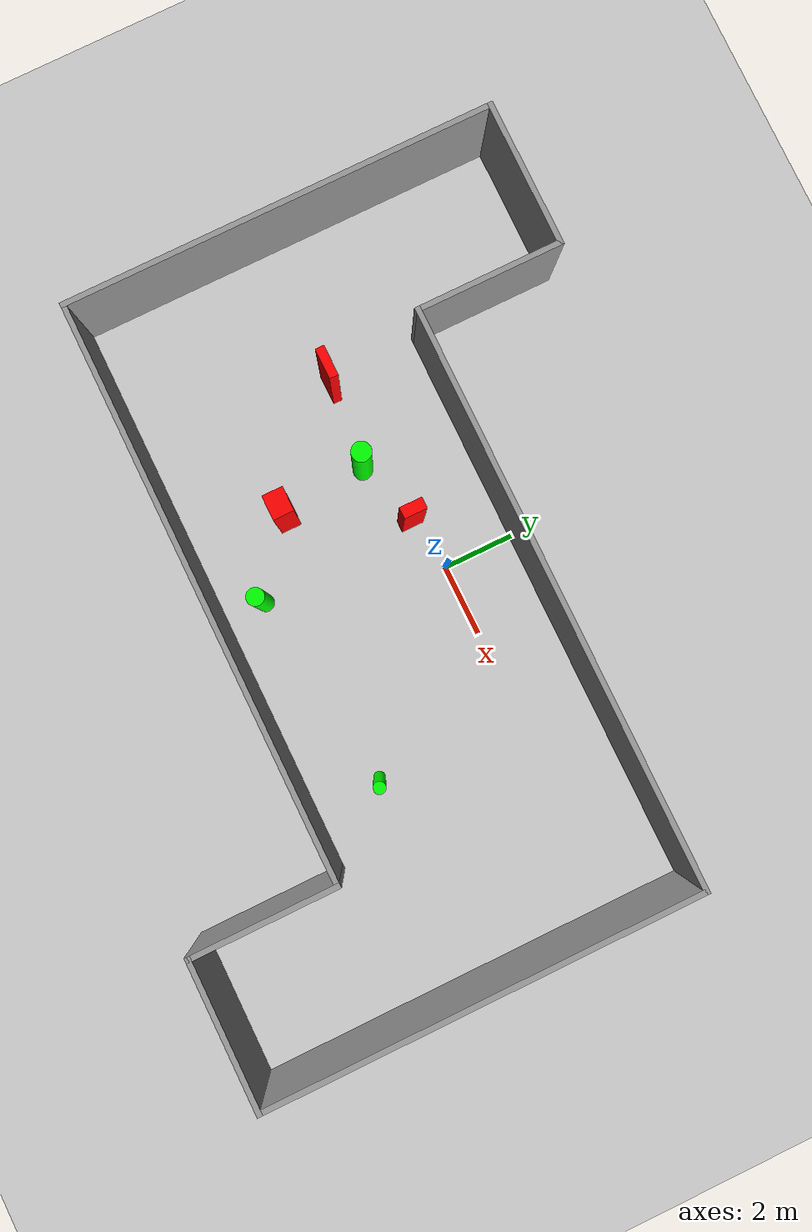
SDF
<sdf version="1.7">
 <world name="default">
  <light name="sun" type="directional">
   <pose>0 0 10 0 -0 0</pose>
   <diffuse>0.8 0.8 0.8 1</diffuse>
   <specular>0.2 0.2 0.2 1</specular>
   <attenuation>
    <range>1000</range>
    <constant>0.9</constant>
    <linear>0.01</linear>
    <quadratic>0.001</quadratic>
   </attenuation>
   <direction>-0.5 0.1 -0.9</direction>
   <spot><inner_angle>0</inner_angle><outer_angle>0</outer_angle><falloff>0</falloff></spot>
  </light>
  <model name="ground_plane">
   <static>1</static>
   <link name="link">
    <collision name="collision">
     <geometry><plane><normal>0 0 1</normal><size>100 100</size></plane></geometry>
     <surface>
      <contact><collide_bitmask>65535</collide_bitmask></contact>
      <friction><ode><mu>100</mu><mu2>50</mu2></ode></friction>
     </surface>
    </collision>
    <visual name="visual">
     <cast_shadows>0</cast_shadows>
     <geometry><plane><normal>0 0 1</normal><size>100 100</size></plane></geometry>
     <material>
      <script><uri>file://media/materials/scripts/gazebo.material</uri><name>Gazebo/Grey</name></script>
     </material>
    </visual>
   </link>
  </model>
  <gravity>0 0 -9.8</gravity>
  <magnetic_field>6e-06 2.3e-05 -4.2e-05</magnetic_field>
  <atmosphere type="adiabatic"/>
  <physics type="ode">
   <max_step_size>0.001</max_step_size>
   <real_time_factor>1</real_time_factor>
   <real_time_update_rate>1000</real_time_update_rate>
  </physics>
  <scene><ambient>0.4 0.4 0.4 1</ambient><background>0.7 0.7 0.7 1</background><shadows>1</shadows></scene>
  <spherical_coordinates>
   <surface_model>EARTH_WGS84</surface_model>
   <latitude_deg>0</latitude_deg>
   <longitude_deg>0</longitude_deg>
   <elevation>0</elevation>
   <heading_deg>0</heading_deg>
  </spherical_coordinates>
  <model name="my_base_walls">
   <link name="Wall_13">
    <collision name="Wall_13_Collision">
     <geometry><box><size>12.15 0.15 2.5</size></box></geometry>
     <pose>0 0 1.25 0 -0 0</pose>
    </collision>
    <visual name="Wall_13_Visual">
     <pose>0 0 1.25 0 -0 0</pose>
     <geometry><box><size>12.15 0.15 2.5</size></box></geometry>
     <material>
      <script><uri>file://media/materials/scripts/gazebo.material</uri><name>Gazebo/Grey</name></script>
      <ambient>1 1 1 1</ambient>
     </material>
     <meta><layer>0</layer></meta>
    </visual>
    <pose>10 -2 0 0 -0 1.5708</pose>
   </link>
   <link name="Wall_15">
    <collision name="Wall_15_Collision">
     <geometry><box><size>16.15 0.15 2.5</size></box></geometry>
     <pose>0 0 1.25 0 -0 0</pose>
    </collision>
    <visual name="Wall_15_Visual">
     <pose>0 0 1.25 0 -0 0</pose>
     <geometry><box><size>16.15 0.15 2.5</size></box></geometry>
     <material>
      <script><uri>file://media/materials/scripts/gazebo.material</uri><name>Gazebo/Grey</name></script>
      <ambient>1 1 1 1</ambient>
     </material>
     <meta><layer>0</layer></meta>
    </visual>
    <pose>2 4 0 0 -0 3.14159</pose>
   </link>
   <link name="Wall_17">
    <collision name="Wall_17_Collision">
     <geometry><box><size>4.15 0.15 2.5</size></box></geometry>
     <pose>0 0 1.25 0 -0 0</pose>
    </collision>
    <visual name="Wall_17_Visual">
     <pose>0 0 1.25 0 -0 0</pose>
     <geometry><box><size>4.15 0.15 2.5</size></box></geometry>
     <material>
      <script><uri>file://media/materials/scripts/gazebo.material</uri><name>Gazebo/Grey</name></script>
      <ambient>1 1 1 1</ambient>
     </material>
     <meta><layer>0</layer></meta>
    </visual>
    <pose>6 -6 0 0 -0 -1.5708</pose>
   </link>
   <link name="Wall_19">
    <collision name="Wall_19_Collision">
     <geometry><box><size>12.15 0.15 2.5</size></box></geometry>
     <pose>0 0 1.25 0 -0 0</pose>
    </collision>
    <visual name="Wall_19_Visual">
     <pose>0 0 1.25 0 -0 0</pose>
     <geometry><box><size>12.15 0.15 2.5</size></box></geometry>
     <material>
      <script><uri>file://media/materials/scripts/gazebo.material</uri><name>Gazebo/Grey</name></script>
      <ambient>1 1 1 1</ambient>
     </material>
     <meta><layer>0</layer></meta>
    </visual>
    <pose>-10 2 0 0 -0 1.5708</pose>
   </link>
   <link name="Wall_21">
    <collision name="Wall_21_Collision">
     <geometry><box><size>4.15 0.15 2.5</size></box></geometry>
     <pose>0 0 1.25 0 -0 0</pose>
    </collision>
    <visual name="Wall_21_Visual">
     <pose>0 0 1.25 0 -0 0</pose>
     <geometry><box><size>4.15 0.15 2.5</size></box></geometry>
     <material>
      <script><uri>file://media/materials/scripts/gazebo.material</uri><name>Gazebo/Grey</name></script>
      <ambient>1 1 1 1</ambient>
     </material>
     <meta><layer>0</layer></meta>
    </visual>
    <pose>-8 8 0 0 -0 0</pose>
   </link>
   <link name="Wall_23">
    <collision name="Wall_23_Collision">
     <geometry><box><size>4.15 0.15 2.5</size></box></geometry>
     <pose>0 0 1.25 0 -0 0</pose>
    </collision>
    <visual name="Wall_23_Visual">
     <pose>0 0 1.25 0 -0 0</pose>
     <geometry><box><size>4.15 0.15 2.5</size></box></geometry>
     <material>
      <script><uri>file://media/materials/scripts/gazebo.material</uri><name>Gazebo/Grey</name></script>
      <ambient>1 1 1 1</ambient>
     </material>
     <meta><layer>0</layer></meta>
    </visual>
    <pose>-6 6 0 0 -0 -1.5708</pose>
   </link>
   <link name="Wall_25">
    <collision name="Wall_25_Collision">
     <geometry><box><size>4.15 0.15 2.5</size></box></geometry>
     <pose>0 0 1.25 0 -0 0</pose>
    </collision>
    <visual name="Wall_25_Visual">
     <pose>0 0 1.25 0 -0 0</pose>
     <geometry><box><size>4.15 0.15 2.5</size></box></geometry>
     <material>
      <script><uri>file://media/materials/scripts/gazebo.material</uri><name>Gazebo/Grey</name></script>
      <ambient>1 1 1 1</ambient>
     </material>
     <meta><layer>0</layer></meta>
    </visual>
    <pose>8 -8 0 0 -0 0</pose>
   </link>
   <link name="Wall_9">
    <collision name="Wall_9_Collision">
     <geometry><box><size>16.15 0.15 2.5</size></box></geometry>
     <pose>0 0 1.25 0 -0 0</pose>
    </collision>
    <visual name="Wall_9_Visual">
     <pose>0 0 1.25 0 -0 0</pose>
     <geometry><box><size>16.15 0.15 2.5</size></box></geometry>
     <material>
      <script><uri>file://media/materials/scripts/gazebo.material</uri><name>Gazebo/Grey</name></script>
      <ambient>1 1 1 1</ambient>
     </material>
     <meta><layer>0</layer></meta>
    </visual>
    <pose>-2 -4 0 0 -0 3.14159</pose>
   </link>
   <static>1</static>
   <pose>-0 -2 0 0 -0 0</pose>
  </model>
  <model name="cylinder1">
   <static>1</static>
   <link name="link">
    <inertial>
     <mass>1</mass>
     <inertia><ixx>0.5</ixx><ixy>0</ixy><ixz>0</ixz><iyy>0.5</iyy><iyz>0</iyz><izz>1</izz></inertia>
    </inertial>
    <collision name="collision">
     <geometry><cylinder><radius>0.2718926454506915</radius><length>2.5</length></cylinder></geometry>
    </collision>
    <visual name="visual">
     <geometry><cylinder><radius>0.2718926454506915</radius><length>2.5</length></cylinder></geometry>
     <material>
      <ambient>0 1 0 1</ambient>
      <diffuse>0 1 0 1</diffuse>
      <specular>0.1 0.1 0.1 1</specular>
      <emissive>0 0 0 0</emissive>
     </material>
    </visual>
   </link>
   <pose>-3.3576582615829387 -0.8586529669129721 1.25 0 0 0</pose>
  </model>
  <model name="cylinder2">
   <static>1</static>
   <link name="link">
    <inertial>
     <mass>1</mass>
     <inertia><ixx>0.5</ixx><ixy>0</ixy><ixz>0</ixz><iyy>0.5</iyy><iyz>0</iyz><izz>1</izz></inertia>
    </inertial>
    <collision name="collision">
     <geometry><cylinder><radius>0.23997051567447064</radius><length>2.5</length></cylinder></geometry>
    </collision>
    <visual name="visual">
     <geometry><cylinder><radius>0.23997051567447064</radius><length>2.5</length></cylinder></geometry>
     <material>
      <ambient>0 1 0 1</ambient>
      <diffuse>0 1 0 1</diffuse>
      <specular>0.1 0.1 0.1 1</specular>
      <emissive>0 0 0 0</emissive>
     </material>
    </visual>
   </link>
   <pose>-1.2300575597580456 -4.790006765186055 1.25 0 0 0</pose>
  </model>
  <model name="cylinder3">
   <static>1</static>
   <link name="link">
    <inertial>
     <mass>1</mass>
     <inertia><ixx>0.5</ixx><ixy>0</ixy><ixz>0</ixz><iyy>0.5</iyy><iyz>0</iyz><izz>1</izz></inertia>
    </inertial>
    <collision name="collision">
     <geometry><cylinder><radius>0.16288344546569256</radius><length>2.5</length></cylinder></geometry>
    </collision>
    <visual name="visual">
     <geometry><cylinder><radius>0.16288344546569256</radius><length>2.5</length></cylinder></geometry>
     <material>
      <ambient>0 1 0 1</ambient>
      <diffuse>0 1 0 1</diffuse>
      <specular>0.1 0.1 0.1 1</specular>
      <emissive>0 0 0 0</emissive>
     </material>
    </visual>
   </link>
   <pose>4.310841329257666 -4.053185014266465 1.25 0 0 0</pose>
  </model>
  <model name="box1">
   <static>1</static>
   <link name="link">
    <inertial>
     <mass>1</mass>
     <inertia><ixx>0.083</ixx><ixy>0</ixy><ixz>0</ixz><iyy>0.083</iyy><iyz>0</iyz><izz>0.083</izz></inertia>
    </inertial>
    <collision name="collision">
     <geometry><box><size>0.8415404132950632 0.24820796701228998 2.5</size></box></geometry>
    </collision>
    <visual name="visual">
     <geometry><box><size>0.8415404132950632 0.24820796701228998 2.5</size></box></geometry>
     <material>
      <ambient>1 0 0 1</ambient>
      <diffuse>1 0 0 1</diffuse>
      <specular>0.1 0.1 0.1 1</specular>
      <emissive>0 0 0 0</emissive>
     </material>
    </visual>
    <sensor name="my_contact" type="contact">
     <contact><collision>box_collision</collision><topic>__default_topic__</topic></contact>
    </sensor>
   </link>
   <pose>-5.786738391180671 -0.6544582191063908 1.25 0 0 0</pose>
  </model>
  <model name="box2">
   <static>1</static>
   <link name="link">
    <inertial>
     <mass>1</mass>
     <inertia><ixx>0.083</ixx><ixy>0</ixy><ixz>0</ixz><iyy>0.083</iyy><iyz>0</iyz><izz>0.083</izz></inertia>
    </inertial>
    <collision name="collision">
     <geometry><box><size>0.6791286855644914 0.5758470791331795 2.5</size></box></geometry>
    </collision>
    <visual name="visual">
     <geometry><box><size>0.6791286855644914 0.5758470791331795 2.5</size></box></geometry>
     <material>
      <ambient>1 0 0 1</ambient>
      <diffuse>1 0 0 1</diffuse>
      <specular>0.1 0.1 0.1 1</specular>
      <emissive>0 0 0 0</emissive>
     </material>
    </visual>
    <sensor name="my_contact" type="contact">
     <contact><collision>box_collision</collision><topic>__default_topic__</topic></contact>
    </sensor>
   </link>
   <pose>-3.0896165351258094 -3.2902756207996715 1.25 0 0 0</pose>
  </model>
  <model name="box3">
   <static>1</static>
   <link name="link">
    <inertial>
     <mass>1</mass>
     <inertia><ixx>0.083</ixx><ixy>0</ixy><ixz>0</ixz><iyy>0.083</iyy><iyz>0</iyz><izz>0.083</izz></inertia>
    </inertial>
    <collision name="collision">
     <geometry><box><size>0.3141341656636314 0.6316034738456796 2.5</size></box></geometry>
    </collision>
    <visual name="visual">
     <geometry><box><size>0.3141341656636314 0.6316034738456796 2.5</size></box></geometry>
     <material>
      <ambient>1 0 0 1</ambient>
      <diffuse>1 0 0 1</diffuse>
      <specular>0.1 0.1 0.1 1</specular>
      <emissive>0 0 0 0</emissive>
     </material>
    </visual>
    <sensor name="my_contact" type="contact">
     <contact><collision>box_collision</collision><topic>__default_topic__</topic></contact>
    </sensor>
   </link>
   <pose>-1.5227288184506964 -0.3121865881537138 1.25 0 0 0</pose>
  </model>
 </world>
</sdf>
